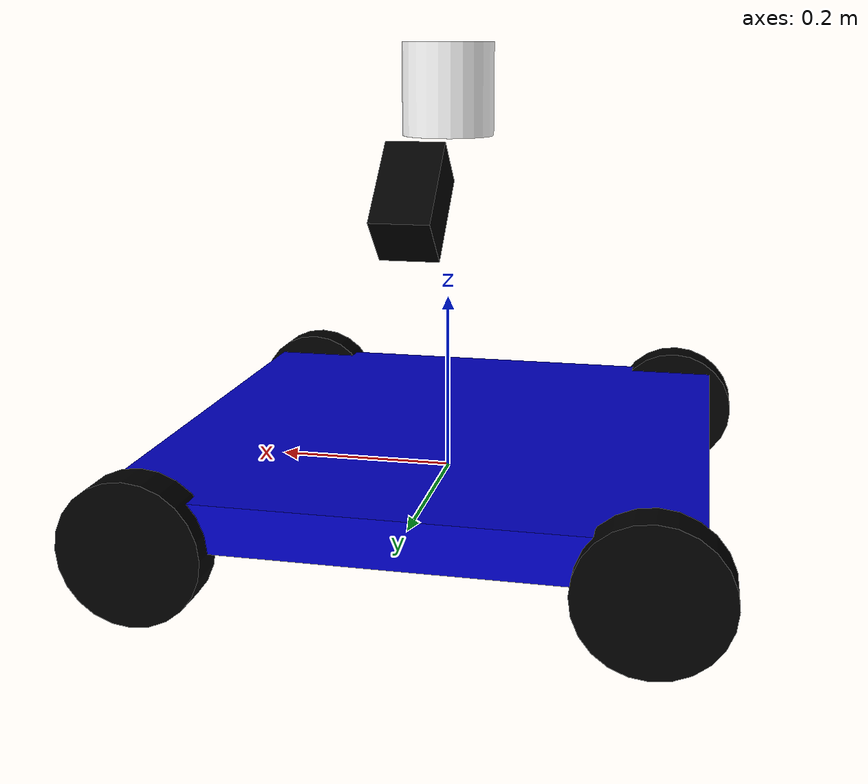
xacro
<?xml version="1.0" encoding="utf-8"?>
<robot name="sentry" xmlns:xacro="http://ros.org/wiki/xacro">

  <material name="blue">
    <color rgba="0 0 0.8 1"/>
  </material>
  <material name="black">
    <color rgba="0 0 0 1"/>
  </material>
  <material name="white">
    <color rgba="1 1 1 1"/>
  </material>

  <link name="base_footprint" />

  <link name="base_link">
    <visual>
      <origin xyz="0 0 0" rpy="0 0 0" />
      <geometry>
        <box size="0.5925 0.5925 0.05" />
      </geometry>
      <material name="blue" />
    </visual>
  </link>

  <link name="gimbal_link">
    <visual>
      <geometry>
        <cylinder radius="0.05" length="0.1" />
      </geometry>
      <material name="white" />
    </visual>
  </link>

  <link name="livox_frame">
    <visual>
      <geometry>
        <box size="0.1 0.06 0.06" />
      </geometry>
      <material name="black" />
    </visual>
  </link>

  <xacro:macro name="wheel_link" params="name">
    <link name="${name}">
      <visual>
        <origin xyz="0 0 0" rpy="1.5707 0 0" />
        <geometry>
          <cylinder radius="0.075" length="0.04" /> </geometry>
        <material name="black" />
      </visual>
    </link>
  </xacro:macro>

  <xacro:wheel_link name="wheel_front_left" />
  <xacro:wheel_link name="wheel_front_right" />
  <xacro:wheel_link name="wheel_back_left" />
  <xacro:wheel_link name="wheel_back_right" />

  <joint name="base_footprint_joint" type="fixed">
    <parent link="base_footprint"/>
    <child link="base_link" />
    <origin xyz="0 0 0.025" rpy="0 0 0"/>
  </joint>

  <joint name="base_to_gimbal_joint" type="fixed">
    <parent link="base_link"/>
    <child link="gimbal_link" />
    <origin xyz="0 0 0.406" rpy="0 0 0"/>
  </joint>

  <joint name="gimbal_to_livox_joint" type="fixed">
    <parent link="gimbal_link"/>
    <child link="livox_frame" />
    <origin xyz="0 0.17 -0.101" rpy="0 0.7854 1.5708"/>
  </joint>

  <joint name="joint_wheel_front_left" type="continuous">
    <parent link="base_link" />
    <child link="wheel_front_left" />
    <origin xyz="0.25 0.296 -0.025" rpy="0 0 0" />
    <axis xyz="0 1 0" />
  </joint>

  <joint name="joint_wheel_front_right" type="continuous">
    <parent link="base_link" />
    <child link="wheel_front_right" />
    <origin xyz="0.25 -0.296 -0.025" rpy="0 0 0" />
    <axis xyz="0 1 0" />
  </joint>

  <joint name="joint_wheel_back_left" type="continuous">
    <parent link="base_link" />
    <child link="wheel_back_left" />
    <origin xyz="-0.25 0.296 -0.025" rpy="0 0 0" />
    <axis xyz="0 1 0" />
  </joint>

  <joint name="joint_wheel_back_right" type="continuous">
    <parent link="base_link" />
    <child link="wheel_back_right" />
    <origin xyz="-0.25 -0.296 -0.025" rpy="0 0 0" />
    <axis xyz="0 1 0" />
  </joint>

</robot>
